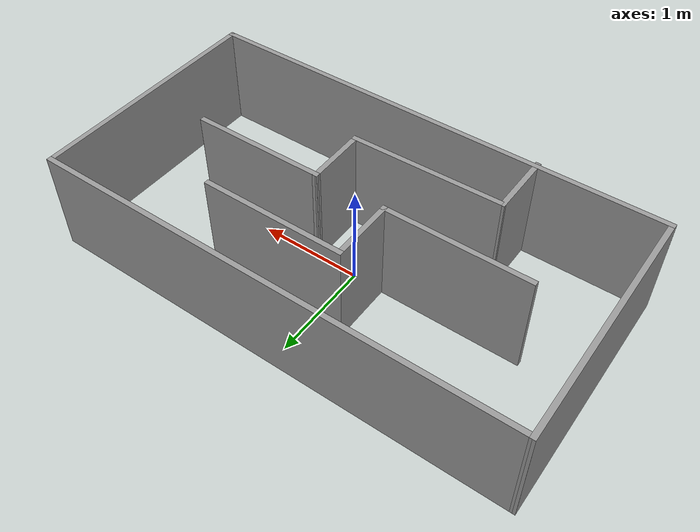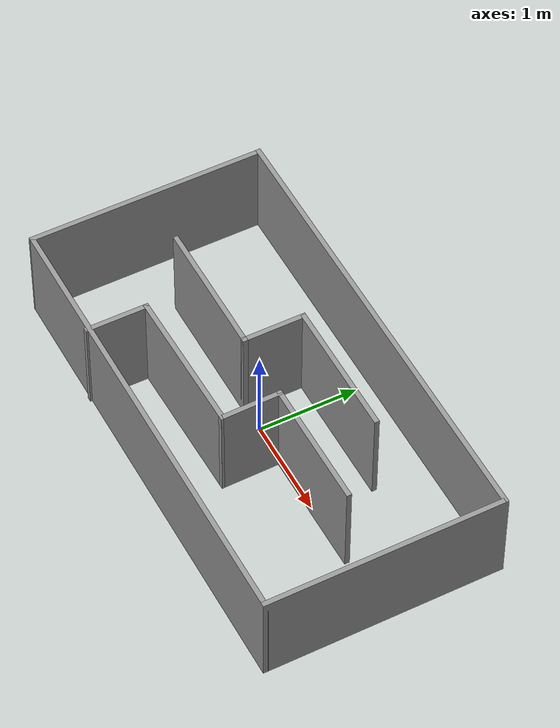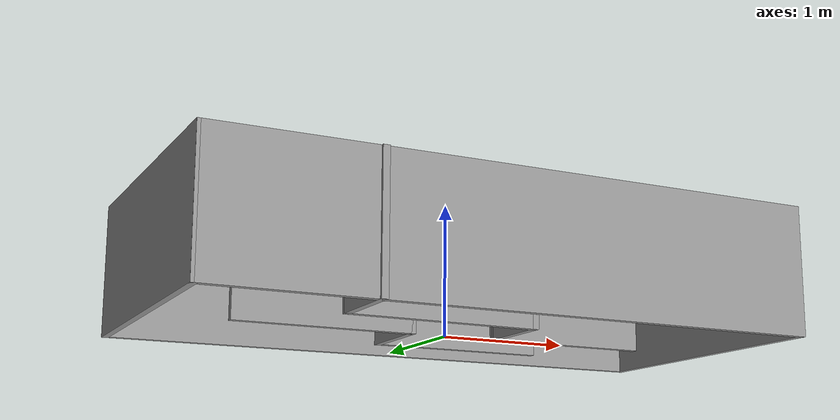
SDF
<?xml version='1.0'?>
<sdf version='1.7'>
  <model name='1st_track'>
    <pose>0.0615 -0.021465 0 0 -0 0</pose>
    <link name='Wall_1'>
      <collision name='Wall_1_Collision'>
        <geometry>
          <box>
            <size>4.64986 0.05 1</size>
          </box>
        </geometry>
        <pose>0 0 0.5 0 -0 0</pose>
      </collision>
      <visual name='Wall_1_Visual'>
        <pose>0 0 0.5 0 -0 0</pose>
        <geometry>
          <box>
            <size>4.64986 0.05 1</size>
          </box>
        </geometry>
        <material>
          <script>
            <uri>file://media/materials/scripts/gazebo.material</uri>
            <name>Gazebo/Grey</name>
          </script>
          <ambient>1 1 1 1</ambient>
        </material>
        <meta>
          <layer>0</layer>
        </meta>
      </visual>
      <pose>0.0035 -1.16203 0 0 -0 -0.000217</pose>
    </link>
    <link name='Wall_10'>
      <collision name='Wall_10_Collision'>
        <geometry>
          <box>
            <size>1.30656 0.05 1</size>
          </box>
        </geometry>
        <pose>0 0 0.5 0 -0 0</pose>
      </collision>
      <visual name='Wall_10_Visual'>
        <pose>0 0 0.5 0 -0 0</pose>
        <geometry>
          <box>
            <size>1.30656 0.05 1</size>
          </box>
        </geometry>
        <material>
          <script>
            <uri>file://media/materials/scripts/gazebo.material</uri>
            <name>Gazebo/Grey</name>
          </script>
          <ambient>1 1 1 1</ambient>
        </material>
        <meta>
          <layer>0</layer>
        </meta>
      </visual>
      <pose>0.978227 0.011227 0 0 -0 -3.13962</pose>
    </link>
    <link name='Wall_11'>
      <collision name='Wall_11_Collision'>
        <geometry>
          <box>
            <size>0.625769 0.05 1</size>
          </box>
        </geometry>
        <pose>0 0 0.5 0 -0 0</pose>
      </collision>
      <visual name='Wall_11_Visual'>
        <pose>0 0 0.5 0 -0 0</pose>
        <geometry>
          <box>
            <size>0.625769 0.05 1</size>
          </box>
        </geometry>
        <material>
          <script>
            <uri>file://media/materials/scripts/gazebo.material</uri>
            <name>Gazebo/Grey</name>
          </script>
          <ambient>1 1 1 1</ambient>
        </material>
        <meta>
          <layer>0</layer>
        </meta>
      </visual>
      <pose>0.354355 -0.277765 0 0 -0 -1.5555</pose>
    </link>
    <link name='Wall_12'>
      <collision name='Wall_12_Collision'>
        <geometry>
          <box>
            <size>1.50249 0.05 1</size>
          </box>
        </geometry>
        <pose>0 0 0.5 0 -0 0</pose>
      </collision>
      <visual name='Wall_12_Visual'>
        <pose>0 0 0.5 0 -0 0</pose>
        <geometry>
          <box>
            <size>1.50249 0.05 1</size>
          </box>
        </geometry>
        <material>
          <script>
            <uri>file://media/materials/scripts/gazebo.material</uri>
            <name>Gazebo/Grey</name>
          </script>
          <ambient>1 1 1 1</ambient>
        </material>
        <meta>
          <layer>0</layer>
        </meta>
      </visual>
      <pose>-0.367371 -0.578527 0 0 -0 -3.12368</pose>
    </link>
    <link name='Wall_13'>
      <collision name='Wall_13_Collision'>
        <geometry>
          <box>
            <size>0.64 0.05 1</size>
          </box>
        </geometry>
        <pose>0 0 0.5 0 -0 0</pose>
      </collision>
      <visual name='Wall_13_Visual'>
        <pose>0 0 0.5 0 -0 0</pose>
        <geometry>
          <box>
            <size>0.64 0.05 1</size>
          </box>
        </geometry>
        <material>
          <script>
            <uri>file://media/materials/scripts/gazebo.material</uri>
            <name>Gazebo/Grey</name>
          </script>
          <ambient>1 1 1 1</ambient>
        </material>
        <meta>
          <layer>0</layer>
        </meta>
      </visual>
      <pose>-1.0935 -0.886535 0 0 -0 -1.5708</pose>
    </link>
    <link name='Wall_2'>
      <collision name='Wall_2_Collision'>
        <geometry>
          <box>
            <size>2.39363 0.05 1</size>
          </box>
        </geometry>
        <pose>0 0 0.5 0 -0 0</pose>
      </collision>
      <visual name='Wall_2_Visual'>
        <pose>0 0 0.5 0 -0 0</pose>
        <geometry>
          <box>
            <size>2.39363 0.05 1</size>
          </box>
        </geometry>
        <material>
          <script>
            <uri>file://media/materials/scripts/gazebo.material</uri>
            <name>Gazebo/Grey</name>
          </script>
          <ambient>1 1 1 1</ambient>
        </material>
        <meta>
          <layer>0</layer>
        </meta>
      </visual>
      <pose>2.3 0.009465 0 0 -0 1.57378</pose>
    </link>
    <link name='Wall_3'>
      <collision name='Wall_3_Collision'>
        <geometry>
          <box>
            <size>4.64957 0.05 1</size>
          </box>
        </geometry>
        <pose>0 0 0.5 0 -0 0</pose>
      </collision>
      <visual name='Wall_3_Visual'>
        <pose>0 0 0.5 0 -0 0</pose>
        <geometry>
          <box>
            <size>4.64957 0.05 1</size>
          </box>
        </geometry>
        <material>
          <script>
            <uri>file://media/materials/scripts/gazebo.material</uri>
            <name>Gazebo/Grey</name>
          </script>
          <ambient>1 1 1 1</ambient>
        </material>
        <meta>
          <layer>0</layer>
        </meta>
      </visual>
      <pose>-0.0035 1.18146 0 0 -0 3.14159</pose>
    </link>
    <link name='Wall_4'>
      <collision name='Wall_4_Collision'>
        <geometry>
          <box>
            <size>2.393 0.05 1</size>
          </box>
        </geometry>
        <pose>0 0 0.5 0 -0 0</pose>
      </collision>
      <visual name='Wall_4_Visual'>
        <pose>0 0 0.5 0 -0 0</pose>
        <geometry>
          <box>
            <size>2.393 0.05 1</size>
          </box>
        </geometry>
        <material>
          <script>
            <uri>file://media/materials/scripts/gazebo.material</uri>
            <name>Gazebo/Grey</name>
          </script>
          <ambient>1 1 1 1</ambient>
        </material>
        <meta>
          <layer>0</layer>
        </meta>
      </visual>
      <pose>-2.3 0.009965 0 0 -0 -1.56781</pose>
    </link>
    <link name='Wall_6'>
      <collision name='Wall_6_Collision'>
        <geometry>
          <box>
            <size>1.40018 0.05 1</size>
          </box>
        </geometry>
        <pose>0 0 0.5 0 -0 0</pose>
      </collision>
      <visual name='Wall_6_Visual'>
        <pose>0 0 0.5 0 -0 0</pose>
        <geometry>
          <box>
            <size>1.40018 0.05 1</size>
          </box>
        </geometry>
        <material>
          <script>
            <uri>file://media/materials/scripts/gazebo.material</uri>
            <name>Gazebo/Grey</name>
          </script>
          <ambient>1 1 1 1</ambient>
        </material>
        <meta>
          <layer>0</layer>
        </meta>
      </visual>
      <pose>-1.0145 0.012465 0 0 -0 0</pose>
    </link>
    <link name='Wall_7'>
      <collision name='Wall_7_Collision'>
        <geometry>
          <box>
            <size>0.65 0.05 1</size>
          </box>
        </geometry>
        <pose>0 0 0.5 0 -0 0</pose>
      </collision>
      <visual name='Wall_7_Visual'>
        <pose>0 0 0.5 0 -0 0</pose>
        <geometry>
          <box>
            <size>0.65 0.05 1</size>
          </box>
        </geometry>
        <material>
          <script>
            <uri>file://media/materials/scripts/gazebo.material</uri>
            <name>Gazebo/Grey</name>
          </script>
          <ambient>1 1 1 1</ambient>
        </material>
        <meta>
          <layer>0</layer>
        </meta>
      </visual>
      <pose>-0.3395 0.312465 0 0 -0 1.5708</pose>
    </link>
    <link name='Wall_8'>
      <collision name='Wall_8_Collision'>
        <geometry>
          <box>
            <size>1.4 0.05 1</size>
          </box>
        </geometry>
        <pose>0 0 0.5 0 -0 0</pose>
      </collision>
      <visual name='Wall_8_Visual'>
        <pose>0 0 0.5 0 -0 0</pose>
        <geometry>
          <box>
            <size>1.4 0.05 1</size>
          </box>
        </geometry>
        <material>
          <script>
            <uri>file://media/materials/scripts/gazebo.material</uri>
            <name>Gazebo/Grey</name>
          </script>
          <ambient>1 1 1 1</ambient>
        </material>
        <meta>
          <layer>0</layer>
        </meta>
      </visual>
      <pose>0.3355 0.612465 0 0 -0 0</pose>
    </link>
    <static>1</static>
  </model>
</sdf>
